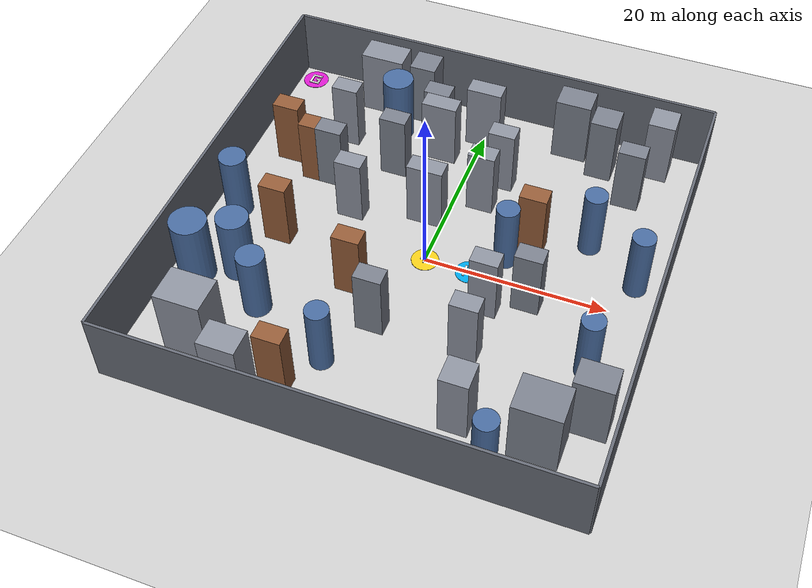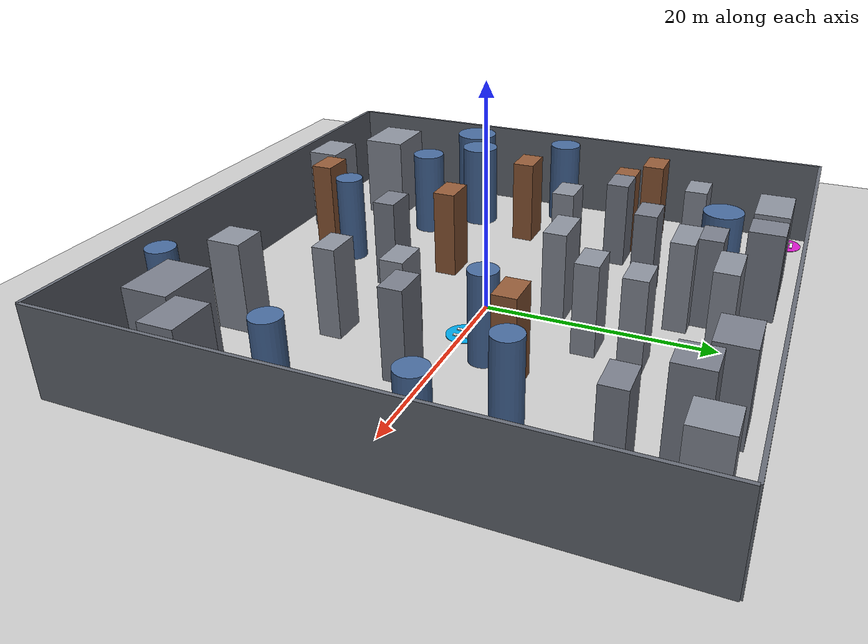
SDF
<?xml version="1.0" ?>
<sdf version="1.6">
  <world name="building_course">

    <!-- Basic environment -->
    <include><uri>model://sun</uri></include>
    <include><uri>model://ground_plane</uri></include>

    <!--  50m x 50m hard building cluster (high-density alleyways) -->
    <!--  Outer walls: x,y in [-25,25]                             -->
    <!--  PX4 spawn = (0,0)  HOMING = (5,0,4) [+X 5m]              -->
    <!--  GOAL = (-23,23,4) [top-left, east/south approach clear]  -->
    <!--  HOMING corridor: y=0, x in [0,5] no buildings            -->
    <!--  Obstacles: alleyway layout, sizes 2~5m                   -->

    <scene>
      <ambient>0.45 0.48 0.55 1</ambient>
      <background>0.55 0.62 0.70 1</background>
      <shadows>1</shadows>
    </scene>

    <!-- Outer perimeter walls -->
    <model name="perim_s">
      <static>true</static>
      <pose>0.00 -25.00 4.0 0 0 0</pose>
      <link name="body">
        <collision name="c"><geometry><box><size>50.00 0.30 8.0</size></box></geometry></collision>
        <visual name="v"><geometry><box><size>50.00 0.30 8.0</size></box></geometry>
          <material><ambient>0.30 0.32 0.36 1</ambient><diffuse>0.40 0.42 0.46 1</diffuse></material>
        </visual>
      </link>
    </model>
    <model name="perim_n">
      <static>true</static>
      <pose>0.00 25.00 4.0 0 0 0</pose>
      <link name="body">
        <collision name="c"><geometry><box><size>50.00 0.30 8.0</size></box></geometry></collision>
        <visual name="v"><geometry><box><size>50.00 0.30 8.0</size></box></geometry>
          <material><ambient>0.30 0.32 0.36 1</ambient><diffuse>0.40 0.42 0.46 1</diffuse></material>
        </visual>
      </link>
    </model>
    <model name="perim_w">
      <static>true</static>
      <pose>-25.00 0.00 4.0 0 0 0</pose>
      <link name="body">
        <collision name="c"><geometry><box><size>0.30 50.00 8.0</size></box></geometry></collision>
        <visual name="v"><geometry><box><size>0.30 50.00 8.0</size></box></geometry>
          <material><ambient>0.30 0.32 0.36 1</ambient><diffuse>0.40 0.42 0.46 1</diffuse></material>
        </visual>
      </link>
    </model>
    <model name="perim_e">
      <static>true</static>
      <pose>25.00 0.00 4.0 0 0 0</pose>
      <link name="body">
        <collision name="c"><geometry><box><size>0.30 50.00 8.0</size></box></geometry></collision>
        <visual name="v"><geometry><box><size>0.30 50.00 8.0</size></box></geometry>
          <material><ambient>0.30 0.32 0.36 1</ambient><diffuse>0.40 0.42 0.46 1</diffuse></material>
        </visual>
      </link>
    </model>

    <!-- Building obstacles (42) - alleyway layout + goal approach kept clear -->
    <model name="warehouse_nw2">
      <static>true</static>
      <pose>-13.00 22.00 4.0 0 0 0</pose>
      <link name="body">
        <collision name="c"><geometry><box><size>5.00 3.00 8.0</size></box></geometry></collision>
        <visual name="v"><geometry><box><size>5.00 3.00 8.0</size></box></geometry>
          <material><ambient>0.45 0.47 0.52 1</ambient><diffuse>0.55 0.57 0.62 1</diffuse></material>
        </visual>
      </link>
    </model>
    <model name="silo_nw2">
      <static>true</static>
      <pose>-10.00 18.00 4.0 0 0 0</pose>
      <link name="body">
        <collision name="c"><geometry><cylinder><radius>1.75</radius><length>8.0</length></cylinder></geometry></collision>
        <visual name="v"><geometry><cylinder><radius>1.75</radius><length>8.0</length></cylinder></geometry>
          <material><ambient>0.20 0.30 0.45 1</ambient><diffuse>0.28 0.42 0.62 1</diffuse></material>
        </visual>
      </link>
    </model>
    <model name="block_nw1">
      <static>true</static>
      <pose>-8.00 22.00 4.0 0 0 0</pose>
      <link name="body">
        <collision name="c"><geometry><box><size>3.00 3.00 8.0</size></box></geometry></collision>
        <visual name="v"><geometry><box><size>3.00 3.00 8.0</size></box></geometry>
          <material><ambient>0.38 0.40 0.44 1</ambient><diffuse>0.48 0.50 0.55 1</diffuse></material>
        </visual>
      </link>
    </model>
    <model name="block_nw2">
      <static>true</static>
      <pose>-5.00 18.00 4.0 0 0 0</pose>
      <link name="body">
        <collision name="c"><geometry><box><size>3.00 2.00 8.0</size></box></geometry></collision>
        <visual name="v"><geometry><box><size>3.00 2.00 8.0</size></box></geometry>
          <material><ambient>0.38 0.40 0.44 1</ambient><diffuse>0.48 0.50 0.55 1</diffuse></material>
        </visual>
      </link>
    </model>
    <model name="block_nw3">
      <static>true</static>
      <pose>-15.00 15.00 4.0 0 0 0</pose>
      <link name="body">
        <collision name="c"><geometry><box><size>3.00 2.00 8.0</size></box></geometry></collision>
        <visual name="v"><geometry><box><size>3.00 2.00 8.0</size></box></geometry>
          <material><ambient>0.45 0.47 0.52 1</ambient><diffuse>0.55 0.57 0.62 1</diffuse></material>
        </visual>
      </link>
    </model>
    <model name="container_nw1">
      <static>true</static>
      <pose>-20.00 10.00 4.0 0 0 0</pose>
      <link name="body">
        <collision name="c"><geometry><box><size>3.00 2.00 8.0</size></box></geometry></collision>
        <visual name="v"><geometry><box><size>3.00 2.00 8.0</size></box></geometry>
          <material><ambient>0.45 0.28 0.18 1</ambient><diffuse>0.58 0.36 0.22 1</diffuse></material>
        </visual>
      </link>
    </model>
    <model name="container_nw2">
      <static>true</static>
      <pose>-16.00 8.00 4.0 0 0 0</pose>
      <link name="body">
        <collision name="c"><geometry><box><size>3.00 2.00 8.0</size></box></geometry></collision>
        <visual name="v"><geometry><box><size>3.00 2.00 8.0</size></box></geometry>
          <material><ambient>0.45 0.28 0.18 1</ambient><diffuse>0.58 0.36 0.22 1</diffuse></material>
        </visual>
      </link>
    </model>
    <model name="hangar_sw1">
      <static>true</static>
      <pose>-18.00 -18.00 4.0 0 0 0</pose>
      <link name="body">
        <collision name="c"><geometry><box><size>5.00 4.00 8.0</size></box></geometry></collision>
        <visual name="v"><geometry><box><size>5.00 4.00 8.0</size></box></geometry>
          <material><ambient>0.45 0.47 0.52 1</ambient><diffuse>0.55 0.57 0.62 1</diffuse></material>
        </visual>
      </link>
    </model>
    <model name="hangar_sw2">
      <static>true</static>
      <pose>-12.00 -22.00 4.0 0 0 0</pose>
      <link name="body">
        <collision name="c"><geometry><box><size>4.00 3.00 8.0</size></box></geometry></collision>
        <visual name="v"><geometry><box><size>4.00 3.00 8.0</size></box></geometry>
          <material><ambient>0.45 0.47 0.52 1</ambient><diffuse>0.55 0.57 0.62 1</diffuse></material>
        </visual>
      </link>
    </model>
    <model name="tank_sw1">
      <static>true</static>
      <pose>-22.00 -10.00 4.0 0 0 0</pose>
      <link name="body">
        <collision name="c"><geometry><cylinder><radius>2.00</radius><length>8.0</length></cylinder></geometry></collision>
        <visual name="v"><geometry><cylinder><radius>2.00</radius><length>8.0</length></cylinder></geometry>
          <material><ambient>0.20 0.30 0.45 1</ambient><diffuse>0.28 0.42 0.62 1</diffuse></material>
        </visual>
      </link>
    </model>
    <model name="tank_sw2">
      <static>true</static>
      <pose>-18.00 -8.00 4.0 0 0 0</pose>
      <link name="body">
        <collision name="c"><geometry><cylinder><radius>1.75</radius><length>8.0</length></cylinder></geometry></collision>
        <visual name="v"><geometry><cylinder><radius>1.75</radius><length>8.0</length></cylinder></geometry>
          <material><ambient>0.20 0.30 0.45 1</ambient><diffuse>0.28 0.42 0.62 1</diffuse></material>
        </visual>
      </link>
    </model>
    <model name="tank_sw3">
      <static>true</static>
      <pose>-14.00 -12.00 4.0 0 0 0</pose>
      <link name="body">
        <collision name="c"><geometry><cylinder><radius>1.50</radius><length>8.0</length></cylinder></geometry></collision>
        <visual name="v"><geometry><cylinder><radius>1.50</radius><length>8.0</length></cylinder></geometry>
          <material><ambient>0.20 0.30 0.45 1</ambient><diffuse>0.28 0.42 0.62 1</diffuse></material>
        </visual>
      </link>
    </model>
    <model name="shed_sw1">
      <static>true</static>
      <pose>-8.00 -20.00 4.0 0 0 0</pose>
      <link name="body">
        <collision name="c"><geometry><box><size>3.00 2.00 8.0</size></box></geometry></collision>
        <visual name="v"><geometry><box><size>3.00 2.00 8.0</size></box></geometry>
          <material><ambient>0.45 0.28 0.18 1</ambient><diffuse>0.58 0.36 0.22 1</diffuse></material>
        </visual>
      </link>
    </model>
    <model name="shed_sw2">
      <static>true</static>
      <pose>-5.00 -16.00 4.0 0 0 0</pose>
      <link name="body">
        <collision name="c"><geometry><cylinder><radius>1.25</radius><length>8.0</length></cylinder></geometry></collision>
        <visual name="v"><geometry><cylinder><radius>1.25</radius><length>8.0</length></cylinder></geometry>
          <material><ambient>0.20 0.30 0.45 1</ambient><diffuse>0.28 0.42 0.62 1</diffuse></material>
        </visual>
      </link>
    </model>
    <model name="datacenter_se1">
      <static>true</static>
      <pose>18.00 -18.00 4.0 0 0 0</pose>
      <link name="body">
        <collision name="c"><geometry><box><size>5.00 4.00 8.0</size></box></geometry></collision>
        <visual name="v"><geometry><box><size>5.00 4.00 8.0</size></box></geometry>
          <material><ambient>0.38 0.40 0.44 1</ambient><diffuse>0.48 0.50 0.55 1</diffuse></material>
        </visual>
      </link>
    </model>
    <model name="datacenter_se2">
      <static>true</static>
      <pose>22.00 -14.00 4.0 0 0 0</pose>
      <link name="body">
        <collision name="c"><geometry><box><size>4.00 3.00 8.0</size></box></geometry></collision>
        <visual name="v"><geometry><box><size>4.00 3.00 8.0</size></box></geometry>
          <material><ambient>0.38 0.40 0.44 1</ambient><diffuse>0.48 0.50 0.55 1</diffuse></material>
        </visual>
      </link>
    </model>
    <model name="tower_se1">
      <static>true</static>
      <pose>14.00 -22.00 4.0 0 0 0</pose>
      <link name="body">
        <collision name="c"><geometry><cylinder><radius>1.25</radius><length>8.0</length></cylinder></geometry></collision>
        <visual name="v"><geometry><cylinder><radius>1.25</radius><length>8.0</length></cylinder></geometry>
          <material><ambient>0.20 0.30 0.45 1</ambient><diffuse>0.28 0.42 0.62 1</diffuse></material>
        </visual>
      </link>
    </model>
    <model name="tower_se2">
      <static>true</static>
      <pose>20.00 -8.00 4.0 0 0 0</pose>
      <link name="body">
        <collision name="c"><geometry><cylinder><radius>1.25</radius><length>8.0</length></cylinder></geometry></collision>
        <visual name="v"><geometry><cylinder><radius>1.25</radius><length>8.0</length></cylinder></geometry>
          <material><ambient>0.20 0.30 0.45 1</ambient><diffuse>0.28 0.42 0.62 1</diffuse></material>
        </visual>
      </link>
    </model>
    <model name="block_se1">
      <static>true</static>
      <pose>10.00 -18.00 4.0 0 0 0</pose>
      <link name="body">
        <collision name="c"><geometry><box><size>3.00 3.00 8.0</size></box></geometry></collision>
        <visual name="v"><geometry><box><size>3.00 3.00 8.0</size></box></geometry>
          <material><ambient>0.45 0.47 0.52 1</ambient><diffuse>0.55 0.57 0.62 1</diffuse></material>
        </visual>
      </link>
    </model>
    <model name="block_se2">
      <static>true</static>
      <pose>8.00 -10.00 4.0 0 0 0</pose>
      <link name="body">
        <collision name="c"><geometry><box><size>3.00 2.00 8.0</size></box></geometry></collision>
        <visual name="v"><geometry><box><size>3.00 2.00 8.0</size></box></geometry>
          <material><ambient>0.45 0.47 0.52 1</ambient><diffuse>0.55 0.57 0.62 1</diffuse></material>
        </visual>
      </link>
    </model>
    <model name="block_ne1">
      <static>true</static>
      <pose>14.00 20.00 4.0 0 0 0</pose>
      <link name="body">
        <collision name="c"><geometry><box><size>3.00 3.00 8.0</size></box></geometry></collision>
        <visual name="v"><geometry><box><size>3.00 3.00 8.0</size></box></geometry>
          <material><ambient>0.38 0.40 0.44 1</ambient><diffuse>0.48 0.50 0.55 1</diffuse></material>
        </visual>
      </link>
    </model>
    <model name="block_ne2">
      <static>true</static>
      <pose>18.00 16.00 4.0 0 0 0</pose>
      <link name="body">
        <collision name="c"><geometry><box><size>3.00 2.00 8.0</size></box></geometry></collision>
        <visual name="v"><geometry><box><size>3.00 2.00 8.0</size></box></geometry>
          <material><ambient>0.38 0.40 0.44 1</ambient><diffuse>0.48 0.50 0.55 1</diffuse></material>
        </visual>
      </link>
    </model>
    <model name="block_ne3">
      <static>true</static>
      <pose>20.00 22.00 4.0 0 0 0</pose>
      <link name="body">
        <collision name="c"><geometry><box><size>3.00 3.00 8.0</size></box></geometry></collision>
        <visual name="v"><geometry><box><size>3.00 3.00 8.0</size></box></geometry>
          <material><ambient>0.45 0.47 0.52 1</ambient><diffuse>0.55 0.57 0.62 1</diffuse></material>
        </visual>
      </link>
    </model>
    <model name="block_ne4">
      <static>true</static>
      <pose>10.00 22.00 4.0 0 0 0</pose>
      <link name="body">
        <collision name="c"><geometry><box><size>4.00 3.00 8.0</size></box></geometry></collision>
        <visual name="v"><geometry><box><size>4.00 3.00 8.0</size></box></geometry>
          <material><ambient>0.38 0.40 0.44 1</ambient><diffuse>0.48 0.50 0.55 1</diffuse></material>
        </visual>
      </link>
    </model>
    <model name="lane_w1">
      <static>true</static>
      <pose>-2.00 6.00 4.0 0 0 0</pose>
      <link name="body">
        <collision name="c"><geometry><box><size>4.00 2.00 8.0</size></box></geometry></collision>
        <visual name="v"><geometry><box><size>4.00 2.00 8.0</size></box></geometry>
          <material><ambient>0.45 0.47 0.52 1</ambient><diffuse>0.55 0.57 0.62 1</diffuse></material>
        </visual>
      </link>
    </model>
    <model name="lane_w2">
      <static>true</static>
      <pose>3.00 10.00 4.0 0 0 0</pose>
      <link name="body">
        <collision name="c"><geometry><box><size>3.00 2.00 8.0</size></box></geometry></collision>
        <visual name="v"><geometry><box><size>3.00 2.00 8.0</size></box></geometry>
          <material><ambient>0.45 0.47 0.52 1</ambient><diffuse>0.55 0.57 0.62 1</diffuse></material>
        </visual>
      </link>
    </model>
    <model name="lane_w3">
      <static>true</static>
      <pose>-8.00 12.00 4.0 0 0 0</pose>
      <link name="body">
        <collision name="c"><geometry><box><size>3.00 2.00 8.0</size></box></geometry></collision>
        <visual name="v"><geometry><box><size>3.00 2.00 8.0</size></box></geometry>
          <material><ambient>0.38 0.40 0.44 1</ambient><diffuse>0.48 0.50 0.55 1</diffuse></material>
        </visual>
      </link>
    </model>
    <model name="lane_w4">
      <static>true</static>
      <pose>-4.00 16.00 4.0 0 0 0</pose>
      <link name="body">
        <collision name="c"><geometry><box><size>4.00 2.00 8.0</size></box></geometry></collision>
        <visual name="v"><geometry><box><size>4.00 2.00 8.0</size></box></geometry>
          <material><ambient>0.45 0.47 0.52 1</ambient><diffuse>0.55 0.57 0.62 1</diffuse></material>
        </visual>
      </link>
    </model>
    <model name="lane_w5">
      <static>true</static>
      <pose>10.00 6.00 4.0 0 0 0</pose>
      <link name="body">
        <collision name="c"><geometry><box><size>3.00 2.00 8.0</size></box></geometry></collision>
        <visual name="v"><geometry><box><size>3.00 2.00 8.0</size></box></geometry>
          <material><ambient>0.45 0.28 0.18 1</ambient><diffuse>0.58 0.36 0.22 1</diffuse></material>
        </visual>
      </link>
    </model>
    <model name="lane_w6">
      <static>true</static>
      <pose>8.00 3.00 4.0 0 0 0</pose>
      <link name="body">
        <collision name="c"><geometry><cylinder><radius>1.25</radius><length>8.0</length></cylinder></geometry></collision>
        <visual name="v"><geometry><cylinder><radius>1.25</radius><length>8.0</length></cylinder></geometry>
          <material><ambient>0.20 0.30 0.45 1</ambient><diffuse>0.28 0.42 0.62 1</diffuse></material>
        </visual>
      </link>
    </model>
    <model name="block_mid1">
      <static>true</static>
      <pose>-10.00 4.00 4.0 0 0 0</pose>
      <link name="body">
        <collision name="c"><geometry><box><size>3.00 2.00 8.0</size></box></geometry></collision>
        <visual name="v"><geometry><box><size>3.00 2.00 8.0</size></box></geometry>
          <material><ambient>0.45 0.47 0.52 1</ambient><diffuse>0.55 0.57 0.62 1</diffuse></material>
        </visual>
      </link>
    </model>
    <model name="block_mid2">
      <static>true</static>
      <pose>-14.00 8.00 4.0 0 0 0</pose>
      <link name="body">
        <collision name="c"><geometry><box><size>3.00 2.00 8.0</size></box></geometry></collision>
        <visual name="v"><geometry><box><size>3.00 2.00 8.0</size></box></geometry>
          <material><ambient>0.38 0.40 0.44 1</ambient><diffuse>0.48 0.50 0.55 1</diffuse></material>
        </visual>
      </link>
    </model>
    <model name="block_mid3">
      <static>true</static>
      <pose>-6.00 -6.00 4.0 0 0 0</pose>
      <link name="body">
        <collision name="c"><geometry><box><size>3.00 2.00 8.0</size></box></geometry></collision>
        <visual name="v"><geometry><box><size>3.00 2.00 8.0</size></box></geometry>
          <material><ambient>0.45 0.28 0.18 1</ambient><diffuse>0.58 0.36 0.22 1</diffuse></material>
        </visual>
      </link>
    </model>
    <model name="block_mid4">
      <static>true</static>
      <pose>8.00 -4.00 4.0 0 0 0</pose>
      <link name="body">
        <collision name="c"><geometry><box><size>3.00 2.00 8.0</size></box></geometry></collision>
        <visual name="v"><geometry><box><size>3.00 2.00 8.0</size></box></geometry>
          <material><ambient>0.45 0.47 0.52 1</ambient><diffuse>0.55 0.57 0.62 1</diffuse></material>
        </visual>
      </link>
    </model>
    <model name="block_mid5">
      <static>true</static>
      <pose>-2.00 -10.00 4.0 0 0 0</pose>
      <link name="body">
        <collision name="c"><geometry><box><size>3.00 2.00 8.0</size></box></geometry></collision>
        <visual name="v"><geometry><box><size>3.00 2.00 8.0</size></box></geometry>
          <material><ambient>0.38 0.40 0.44 1</ambient><diffuse>0.48 0.50 0.55 1</diffuse></material>
        </visual>
      </link>
    </model>
    <model name="block_mid6">
      <static>true</static>
      <pose>4.00 14.00 4.0 0 0 0</pose>
      <link name="body">
        <collision name="c"><geometry><box><size>3.00 2.00 8.0</size></box></geometry></collision>
        <visual name="v"><geometry><box><size>3.00 2.00 8.0</size></box></geometry>
          <material><ambient>0.45 0.47 0.52 1</ambient><diffuse>0.55 0.57 0.62 1</diffuse></material>
        </visual>
      </link>
    </model>
    <model name="silo_extra1">
      <static>true</static>
      <pose>16.00 8.00 4.0 0 0 0</pose>
      <link name="body">
        <collision name="c"><geometry><cylinder><radius>1.25</radius><length>8.0</length></cylinder></geometry></collision>
        <visual name="v"><geometry><cylinder><radius>1.25</radius><length>8.0</length></cylinder></geometry>
          <material><ambient>0.20 0.30 0.45 1</ambient><diffuse>0.28 0.42 0.62 1</diffuse></material>
        </visual>
      </link>
    </model>
    <model name="silo_extra2">
      <static>true</static>
      <pose>-22.00 0.00 4.0 0 0 0</pose>
      <link name="body">
        <collision name="c"><geometry><cylinder><radius>1.50</radius><length>8.0</length></cylinder></geometry></collision>
        <visual name="v"><geometry><cylinder><radius>1.50</radius><length>8.0</length></cylinder></geometry>
          <material><ambient>0.20 0.30 0.45 1</ambient><diffuse>0.28 0.42 0.62 1</diffuse></material>
        </visual>
      </link>
    </model>
    <model name="silo_extra3">
      <static>true</static>
      <pose>22.00 4.00 4.0 0 0 0</pose>
      <link name="body">
        <collision name="c"><geometry><cylinder><radius>1.25</radius><length>8.0</length></cylinder></geometry></collision>
        <visual name="v"><geometry><cylinder><radius>1.25</radius><length>8.0</length></cylinder></geometry>
          <material><ambient>0.20 0.30 0.45 1</ambient><diffuse>0.28 0.42 0.62 1</diffuse></material>
        </visual>
      </link>
    </model>
    <model name="block_extra1">
      <static>true</static>
      <pose>-16.00 -2.00 4.0 0 0 0</pose>
      <link name="body">
        <collision name="c"><geometry><box><size>3.00 2.00 8.0</size></box></geometry></collision>
        <visual name="v"><geometry><box><size>3.00 2.00 8.0</size></box></geometry>
          <material><ambient>0.45 0.28 0.18 1</ambient><diffuse>0.58 0.36 0.22 1</diffuse></material>
        </visual>
      </link>
    </model>
    <model name="block_extra2">
      <static>true</static>
      <pose>0.00 20.00 4.0 0 0 0</pose>
      <link name="body">
        <collision name="c"><geometry><box><size>4.00 2.00 8.0</size></box></geometry></collision>
        <visual name="v"><geometry><box><size>4.00 2.00 8.0</size></box></geometry>
          <material><ambient>0.45 0.47 0.52 1</ambient><diffuse>0.55 0.57 0.62 1</diffuse></material>
        </visual>
      </link>
    </model>
    <model name="block_extra3">
      <static>true</static>
      <pose>12.00 -2.00 4.0 0 0 0</pose>
      <link name="body">
        <collision name="c"><geometry><box><size>3.00 2.00 8.0</size></box></geometry></collision>
        <visual name="v"><geometry><box><size>3.00 2.00 8.0</size></box></geometry>
          <material><ambient>0.38 0.40 0.44 1</ambient><diffuse>0.48 0.50 0.55 1</diffuse></material>
        </visual>
      </link>
    </model>

    <!--  Navigation markers (visual only)         -->

    <!-- SPAWN: (0.0,0.0) - yellow disc + white + -->
    <model name="spawn_marker">
      <static>true</static>
      <pose>0.00 0.00 0 0 0 0</pose>
      <link name="link">
        <visual name="disc">
          <pose>0 0 0.025 0 0 0</pose>
          <geometry><cylinder><radius>1.5</radius><length>0.05</length></cylinder></geometry>
          <material>
            <ambient>0.95 0.8 0.1 1</ambient><diffuse>0.95 0.8 0.1 1</diffuse>
            <specular>0.1 0.1 0.1 1</specular><emissive>0.95 0.8 0.1 1</emissive>
          </material>
        </visual>
        <visual name="plus_h">
          <pose>0 0 0.1 0 0 0</pose>
          <geometry><box><size>1.0 0.2 0.1</size></box></geometry>
          <material><ambient>1 1 1 1</ambient><diffuse>1 1 1 1</diffuse><emissive>0.4 0.4 0.4 1</emissive></material>
        </visual>
        <visual name="plus_v">
          <pose>0 0 0.1 0 0 0</pose>
          <geometry><box><size>0.2 1.0 0.1</size></box></geometry>
          <material><ambient>1 1 1 1</ambient><diffuse>1 1 1 1</diffuse><emissive>0.4 0.4 0.4 1</emissive></material>
        </visual>
      </link>
    </model>

    <!-- HOME: (5.0,0.0) - cyan disc + white H -->
    <model name="home_marker">
      <static>true</static>
      <pose>5.00 0.00 0 0 0 0</pose>
      <link name="link">
        <visual name="disc">
          <pose>0 0 0.025 0 0 0</pose>
          <geometry><cylinder><radius>1.5</radius><length>0.05</length></cylinder></geometry>
          <material>
            <ambient>0.0 0.65 0.9 1</ambient><diffuse>0.0 0.65 0.9 1</diffuse>
            <specular>0.1 0.1 0.1 1</specular><emissive>0.0 0.65 0.9 1</emissive>
          </material>
        </visual>
        <visual name="h_left">
          <pose>-0.475 0 0.1 0 0 0</pose>
          <geometry><box><size>0.25 1.45 0.1</size></box></geometry>
          <material><ambient>1 1 1 1</ambient><diffuse>1 1 1 1</diffuse><emissive>0.4 0.4 0.4 1</emissive></material>
        </visual>
        <visual name="h_right">
          <pose>0.475 0 0.1 0 0 0</pose>
          <geometry><box><size>0.25 1.45 0.1</size></box></geometry>
          <material><ambient>1 1 1 1</ambient><diffuse>1 1 1 1</diffuse><emissive>0.4 0.4 0.4 1</emissive></material>
        </visual>
        <visual name="h_mid">
          <pose>0 0 0.1 0 0 0</pose>
          <geometry><box><size>0.7 0.25 0.1</size></box></geometry>
          <material><ambient>1 1 1 1</ambient><diffuse>1 1 1 1</diffuse><emissive>0.4 0.4 0.4 1</emissive></material>
        </visual>
      </link>
    </model>

    <!-- GOAL: (-23.0,23.0) - magenta disc + white G -->
    <model name="goal_marker">
      <static>true</static>
      <pose>-23.00 23.00 0 0 0 0</pose>
      <link name="link">
        <visual name="disc">
          <pose>0 0 0.025 0 0 0</pose>
          <geometry><cylinder><radius>1.5</radius><length>0.05</length></cylinder></geometry>
          <material>
            <ambient>0.85 0.1 0.8 1</ambient><diffuse>0.85 0.1 0.8 1</diffuse>
            <specular>0.1 0.1 0.1 1</specular><emissive>0.85 0.1 0.8 1</emissive>
          </material>
        </visual>
        <visual name="g_top">
          <pose>0 0.6 0.1 0 0 0</pose>
          <geometry><box><size>1.2 0.25 0.1</size></box></geometry>
          <material><ambient>1 1 1 1</ambient><diffuse>1 1 1 1</diffuse><emissive>0.4 0.4 0.4 1</emissive></material>
        </visual>
        <visual name="g_left">
          <pose>-0.475 0 0.1 0 0 0</pose>
          <geometry><box><size>0.25 1.45 0.1</size></box></geometry>
          <material><ambient>1 1 1 1</ambient><diffuse>1 1 1 1</diffuse><emissive>0.4 0.4 0.4 1</emissive></material>
        </visual>
        <visual name="g_bottom">
          <pose>0 -0.6 0.1 0 0 0</pose>
          <geometry><box><size>1.2 0.25 0.1</size></box></geometry>
          <material><ambient>1 1 1 1</ambient><diffuse>1 1 1 1</diffuse><emissive>0.4 0.4 0.4 1</emissive></material>
        </visual>
        <visual name="g_right_lower">
          <pose>0.475 -0.3 0.1 0 0 0</pose>
          <geometry><box><size>0.25 0.6 0.1</size></box></geometry>
          <material><ambient>1 1 1 1</ambient><diffuse>1 1 1 1</diffuse><emissive>0.4 0.4 0.4 1</emissive></material>
        </visual>
        <visual name="g_mid_stub">
          <pose>0.3 0 0.1 0 0 0</pose>
          <geometry><box><size>0.6 0.25 0.1</size></box></geometry>
          <material><ambient>1 1 1 1</ambient><diffuse>1 1 1 1</diffuse><emissive>0.4 0.4 0.4 1</emissive></material>
        </visual>
      </link>
    </model>
  </world>
</sdf>
